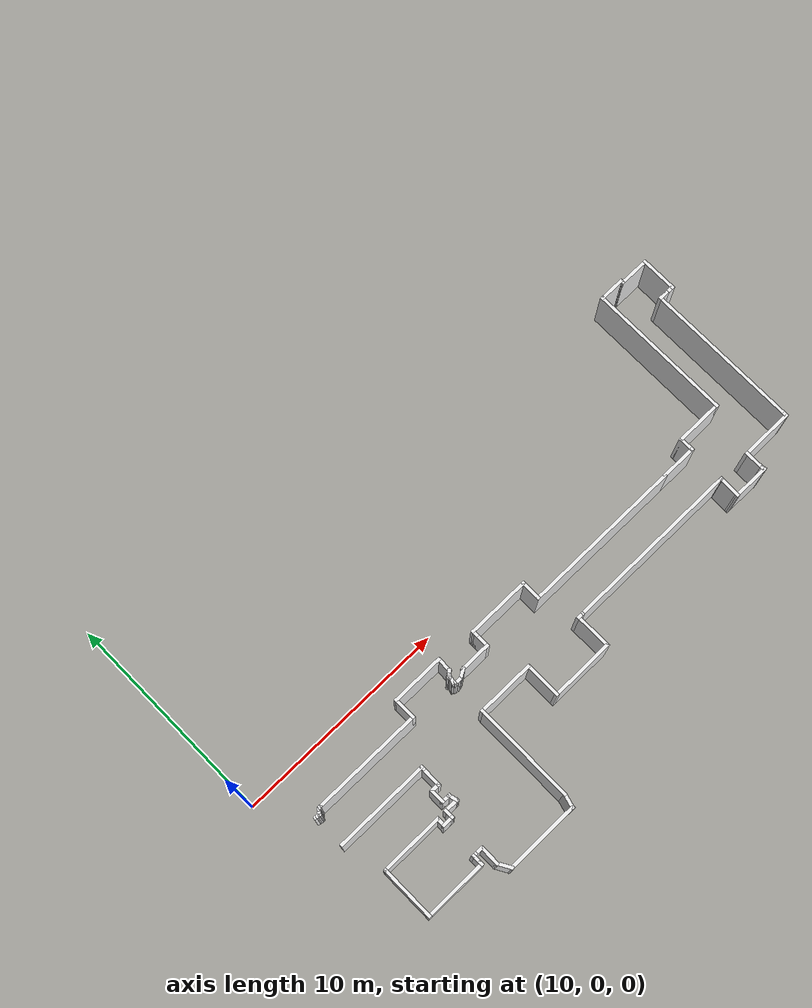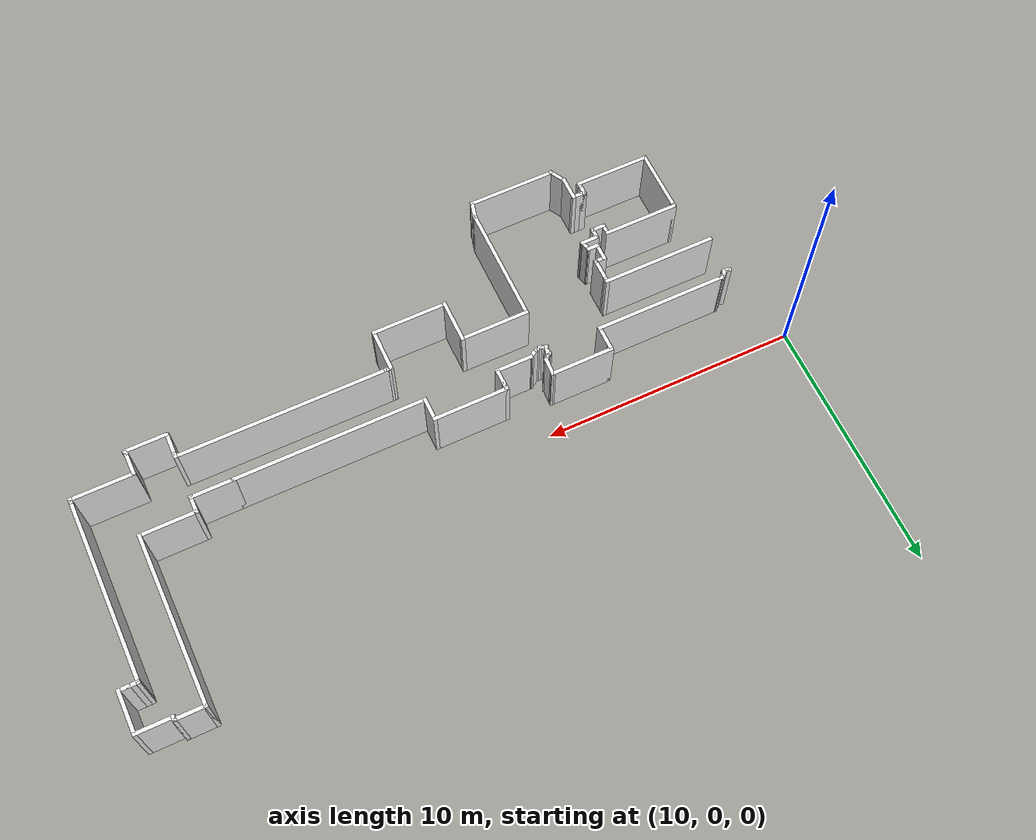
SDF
<sdf version="1.4">
 <model name="south_basement">
  <pose>12.3228 0.447268 0 0 -0 0</pose>
  <link name="Wall_100">
   <collision name="Wall_100_Collision">
    <geometry><box><size>1.5 0.15 2.5</size></box></geometry>
    <pose>0 0 1.25 0 -0 0</pose>
   </collision>
   <visual name="Wall_100_Visual">
    <pose>0 0 1.25 0 -0 0</pose>
    <geometry><box><size>1.5 0.15 2.5</size></box></geometry>
    <material>
     <script><uri>file://media/materials/scripts/gazebo.material</uri><name>Gazebo/White</name></script>
     <ambient>1 1 1 1</ambient>
    </material>
   </visual>
   <pose>24.5122 4.41793 0 0 -0 0</pose>
  </link>
  <link name="Wall_101">
   <collision name="Wall_101_Collision">
    <geometry><box><size>1.75 0.15 2.5</size></box></geometry>
    <pose>0 0 1.25 0 -0 0</pose>
   </collision>
   <visual name="Wall_101_Visual">
    <pose>0 0 1.25 0 -0 0</pose>
    <geometry><box><size>1.75 0.15 2.5</size></box></geometry>
    <material>
     <script><uri>file://media/materials/scripts/gazebo.material</uri><name>Gazebo/White</name></script>
     <ambient>1 1 1 1</ambient>
    </material>
   </visual>
   <pose>25.1872 3.61794 0 0 0 -1.5708</pose>
  </link>
  <link name="Wall_102">
   <collision name="Wall_102_Collision">
    <geometry><box><size>0.5 0.15 2.5</size></box></geometry>
    <pose>0 0 1.25 0 -0 0</pose>
   </collision>
   <visual name="Wall_102_Visual">
    <pose>0 0 1.25 0 -0 0</pose>
    <geometry><box><size>0.5 0.15 2.5</size></box></geometry>
    <material>
     <script><uri>file://media/materials/scripts/gazebo.material</uri><name>Gazebo/White</name></script>
     <ambient>1 1 1 1</ambient>
    </material>
   </visual>
   <pose>25.0122 2.81793 0 0 -0 3.14159</pose>
  </link>
  <link name="Wall_103">
   <collision name="Wall_103_Collision">
    <geometry><box><size>0.5 0.15 2.5</size></box></geometry>
    <pose>0 0 1.25 0 -0 0</pose>
   </collision>
   <visual name="Wall_103_Visual">
    <pose>0 0 1.25 0 -0 0</pose>
    <geometry><box><size>0.5 0.15 2.5</size></box></geometry>
    <material>
     <script><uri>file://media/materials/scripts/gazebo.material</uri><name>Gazebo/White</name></script>
     <ambient>1 1 1 1</ambient>
    </material>
   </visual>
   <pose>24.6622 2.81793 0 0 -0 3.14159</pose>
  </link>
  <link name="Wall_104">
   <collision name="Wall_104_Collision">
    <geometry><box><size>7.25 0.15 2.5</size></box></geometry>
    <pose>0 0 1.25 0 -0 0</pose>
   </collision>
   <visual name="Wall_104_Visual">
    <pose>0 0 1.25 0 -0 0</pose>
    <geometry><box><size>7.25 0.15 2.5</size></box></geometry>
    <material>
     <script><uri>file://media/materials/scripts/gazebo.material</uri><name>Gazebo/White</name></script>
     <ambient>1 1 1 1</ambient>
    </material>
   </visual>
   <pose>24.4872 -0.732065 0 0 0 -1.5708</pose>
  </link>
  <link name="Wall_105">
   <collision name="Wall_105_Collision">
    <geometry><box><size>0.25 0.15 2.5</size></box></geometry>
    <pose>0 0 1.25 0 -0 0</pose>
   </collision>
   <visual name="Wall_105_Visual">
    <pose>0 0 1.25 0 -0 0</pose>
    <geometry><box><size>0.25 0.15 2.5</size></box></geometry>
    <material>
     <script><uri>file://media/materials/scripts/gazebo.material</uri><name>Gazebo/White</name></script>
     <ambient>1 1 1 1</ambient>
    </material>
   </visual>
   <pose>24.4872 -4.33207 0 0 0 -1.5708</pose>
  </link>
  <link name="Wall_106">
   <collision name="Wall_106_Collision">
    <geometry><box><size>2.5 0.15 2.5</size></box></geometry>
    <pose>0 0 1.25 0 -0 0</pose>
   </collision>
   <visual name="Wall_106_Visual">
    <pose>0 0 1.25 0 -0 0</pose>
    <geometry><box><size>2.5 0.15 2.5</size></box></geometry>
    <material>
     <script><uri>file://media/materials/scripts/gazebo.material</uri><name>Gazebo/White</name></script>
     <ambient>1 1 1 1</ambient>
    </material>
   </visual>
   <pose>23.3122 -4.38206 0 0 -0 3.14159</pose>
  </link>
  <link name="Wall_107">
   <collision name="Wall_107_Collision">
    <geometry><box><size>1 0.15 2.5</size></box></geometry>
    <pose>0 0 1.25 0 -0 0</pose>
   </collision>
   <visual name="Wall_107_Visual">
    <pose>0 0 1.25 0 -0 0</pose>
    <geometry><box><size>1 0.15 2.5</size></box></geometry>
    <material>
     <script><uri>file://media/materials/scripts/gazebo.material</uri><name>Gazebo/White</name></script>
     <ambient>1 1 1 1</ambient>
    </material>
   </visual>
   <pose>22.1372 -4.80706 0 0 0 -1.5708</pose>
  </link>
  <link name="Wall_108">
   <collision name="Wall_108_Collision">
    <geometry><box><size>0.25 0.15 2.5</size></box></geometry>
    <pose>0 0 1.25 0 -0 0</pose>
   </collision>
   <visual name="Wall_108_Visual">
    <pose>0 0 1.25 0 -0 0</pose>
    <geometry><box><size>0.25 0.15 2.5</size></box></geometry>
    <material>
     <script><uri>file://media/materials/scripts/gazebo.material</uri><name>Gazebo/White</name></script>
     <ambient>1 1 1 1</ambient>
    </material>
   </visual>
   <pose>22.1501 -5.28036 0 0 0 -1.309</pose>
  </link>
  <link name="Wall_109">
   <collision name="Wall_109_Collision">
    <geometry><box><size>1.75 0.15 2.5</size></box></geometry>
    <pose>0 0 1.25 0 -0 0</pose>
   </collision>
   <visual name="Wall_109_Visual">
    <pose>0 0 1.25 0 -0 0</pose>
    <geometry><box><size>1.75 0.15 2.5</size></box></geometry>
    <material>
     <script><uri>file://media/materials/scripts/gazebo.material</uri><name>Gazebo/White</name></script>
     <ambient>1 1 1 1</ambient>
    </material>
   </visual>
   <pose>21.3631 -5.32866 0 0 -0 3.14159</pose>
  </link>
  <link name="Wall_110">
   <collision name="Wall_110_Collision">
    <geometry><box><size>0.15 0.15 2.5</size></box></geometry>
    <pose>0 0 1.25 0 -0 0</pose>
   </collision>
   <visual name="Wall_110_Visual">
    <pose>0 0 1.25 0 -0 0</pose>
    <geometry><box><size>0.15 0.15 2.5</size></box></geometry>
    <material>
     <script><uri>file://media/materials/scripts/gazebo.material</uri><name>Gazebo/White</name></script>
     <ambient>1 1 1 1</ambient>
    </material>
   </visual>
   <pose>20.5631 -5.32866 0 0 -0 0</pose>
  </link>
  <link name="Wall_111">
   <collision name="Wall_111_Collision">
    <geometry><box><size>1 0.15 2.5</size></box></geometry>
    <pose>0 0 1.25 0 -0 0</pose>
   </collision>
   <visual name="Wall_111_Visual">
    <pose>0 0 1.25 0 -0 0</pose>
    <geometry><box><size>1 0.15 2.5</size></box></geometry>
    <material>
     <script><uri>file://media/materials/scripts/gazebo.material</uri><name>Gazebo/White</name></script>
     <ambient>1 1 1 1</ambient>
    </material>
   </visual>
   <pose>20.5763 -4.90366 0 0 -0 1.53969</pose>
  </link>
  <link name="Wall_114">
   <collision name="Wall_114_Collision">
    <geometry><box><size>0.25 0.15 2.5</size></box></geometry>
    <pose>0 0 1.25 0 -0 0</pose>
   </collision>
   <visual name="Wall_114_Visual">
    <pose>0 0 1.25 0 -0 0</pose>
    <geometry><box><size>0.25 0.15 2.5</size></box></geometry>
    <material>
     <script><uri>file://media/materials/scripts/gazebo.material</uri><name>Gazebo/White</name></script>
     <ambient>1 1 1 1</ambient>
    </material>
   </visual>
   <pose>20.5895 -4.42866 0 0 -0 1.5708</pose>
  </link>
  <link name="Wall_115">
   <collision name="Wall_115_Collision">
    <geometry><box><size>8.25 0.15 2.5</size></box></geometry>
    <pose>0 0 1.25 0 -0 0</pose>
   </collision>
   <visual name="Wall_115_Visual">
    <pose>0 0 1.25 0 -0 0</pose>
    <geometry><box><size>8.25 0.15 2.5</size></box></geometry>
    <material>
     <script><uri>file://media/materials/scripts/gazebo.material</uri><name>Gazebo/White</name></script>
     <ambient>1 1 1 1</ambient>
    </material>
   </visual>
   <pose>16.5395 -4.37866 0 0 -0 3.14159</pose>
  </link>
  <link name="Wall_116">
   <collision name="Wall_116_Collision">
    <geometry><box><size>0.25 0.15 2.5</size></box></geometry>
    <pose>0 0 1.25 0 -0 0</pose>
   </collision>
   <visual name="Wall_116_Visual">
    <pose>0 0 1.25 0 -0 0</pose>
    <geometry><box><size>0.25 0.15 2.5</size></box></geometry>
    <material>
     <script><uri>file://media/materials/scripts/gazebo.material</uri><name>Gazebo/White</name></script>
     <ambient>1 1 1 1</ambient>
    </material>
   </visual>
   <pose>12.4395 -4.37866 0 0 -0 3.14159</pose>
  </link>
  <link name="Wall_117">
   <collision name="Wall_117_Collision">
    <geometry><box><size>0.25 0.15 2.5</size></box></geometry>
    <pose>0 0 1.25 0 -0 0</pose>
   </collision>
   <visual name="Wall_117_Visual">
    <pose>0 0 1.25 0 -0 0</pose>
    <geometry><box><size>0.25 0.15 2.5</size></box></geometry>
    <material>
     <script><uri>file://media/materials/scripts/gazebo.material</uri><name>Gazebo/White</name></script>
     <ambient>1 1 1 1</ambient>
    </material>
   </visual>
   <pose>12.3395 -4.37866 0 0 -0 3.14159</pose>
  </link>
  <link name="Wall_118">
   <collision name="Wall_118_Collision">
    <geometry><box><size>1.75 0.15 2.5</size></box></geometry>
    <pose>0 0 1.25 0 -0 0</pose>
   </collision>
   <visual name="Wall_118_Visual">
    <pose>0 0 1.25 0 -0 0</pose>
    <geometry><box><size>1.75 0.15 2.5</size></box></geometry>
    <material>
     <script><uri>file://media/materials/scripts/gazebo.material</uri><name>Gazebo/White</name></script>
     <ambient>1 1 1 1</ambient>
    </material>
   </visual>
   <pose>12.2895 -5.17866 0 0 0 -1.5708</pose>
  </link>
  <link name="Wall_119">
   <collision name="Wall_119_Collision">
    <geometry><box><size>3 0.15 2.5</size></box></geometry>
    <pose>0 0 1.25 0 -0 0</pose>
   </collision>
   <visual name="Wall_119_Visual">
    <pose>0 0 1.25 0 -0 0</pose>
    <geometry><box><size>3 0.15 2.5</size></box></geometry>
    <material>
     <script><uri>file://media/materials/scripts/gazebo.material</uri><name>Gazebo/White</name></script>
     <ambient>1 1 1 1</ambient>
    </material>
   </visual>
   <pose>10.8645 -5.97866 0 0 -0 3.14159</pose>
  </link>
  <link name="Wall_120">
   <collision name="Wall_120_Collision">
    <geometry><box><size>1.75 0.15 2.5</size></box></geometry>
    <pose>0 0 1.25 0 -0 0</pose>
   </collision>
   <visual name="Wall_120_Visual">
    <pose>0 0 1.25 0 -0 0</pose>
    <geometry><box><size>1.75 0.15 2.5</size></box></geometry>
    <material>
     <script><uri>file://media/materials/scripts/gazebo.material</uri><name>Gazebo/White</name></script>
     <ambient>1 1 1 1</ambient>
    </material>
   </visual>
   <pose>9.43951 -5.17866 0 0 -0 1.5708</pose>
  </link>
  <link name="Wall_121">
   <collision name="Wall_121_Collision">
    <geometry><box><size>2.75 0.15 2.5</size></box></geometry>
    <pose>0 0 1.25 0 -0 0</pose>
   </collision>
   <visual name="Wall_121_Visual">
    <pose>0 0 1.25 0 -0 0</pose>
    <geometry><box><size>2.75 0.15 2.5</size></box></geometry>
    <material>
     <script><uri>file://media/materials/scripts/gazebo.material</uri><name>Gazebo/White</name></script>
     <ambient>1 1 1 1</ambient>
    </material>
   </visual>
   <pose>8.13951 -4.37866 0 0 -0 3.14159</pose>
  </link>
  <link name="Wall_123">
   <collision name="Wall_123_Collision">
    <geometry><box><size>4.75 0.15 2.5</size></box></geometry>
    <pose>0 0 1.25 0 -0 0</pose>
   </collision>
   <visual name="Wall_123_Visual">
    <pose>0 0 1.25 0 -0 0</pose>
    <geometry><box><size>4.75 0.15 2.5</size></box></geometry>
    <material>
     <script><uri>file://media/materials/scripts/gazebo.material</uri><name>Gazebo/White</name></script>
     <ambient>1 1 1 1</ambient>
    </material>
   </visual>
   <pose>6.83951 -6.67866 0 0 0 -1.5708</pose>
  </link>
  <link name="Wall_124">
   <collision name="Wall_124_Collision">
    <geometry><box><size>0.75 0.15 2.5</size></box></geometry>
    <pose>0 0 1.25 0 -0 0</pose>
   </collision>
   <visual name="Wall_124_Visual">
    <pose>0 0 1.25 0 -0 0</pose>
    <geometry><box><size>0.75 0.15 2.5</size></box></geometry>
    <material>
     <script><uri>file://media/materials/scripts/gazebo.material</uri><name>Gazebo/White</name></script>
     <ambient>1 1 1 1</ambient>
    </material>
   </visual>
   <pose>6.76187 -9.26844 0 0 0 -1.8326</pose>
  </link>
  <link name="Wall_125">
   <collision name="Wall_125_Collision">
    <geometry><box><size>3.5 0.15 2.5</size></box></geometry>
    <pose>0 0 1.25 0 -0 0</pose>
   </collision>
   <visual name="Wall_125_Visual">
    <pose>0 0 1.25 0 -0 0</pose>
    <geometry><box><size>3.5 0.15 2.5</size></box></geometry>
    <material>
     <script><uri>file://media/materials/scripts/gazebo.material</uri><name>Gazebo/White</name></script>
     <ambient>1 1 1 1</ambient>
    </material>
   </visual>
   <pose>5.00922 -9.55821 0 0 -0 3.14159</pose>
  </link>
  <link name="Wall_126">
   <collision name="Wall_126_Collision">
    <geometry><box><size>0.75 0.15 2.5</size></box></geometry>
    <pose>0 0 1.25 0 -0 0</pose>
   </collision>
   <visual name="Wall_126_Visual">
    <pose>0 0 1.25 0 -0 0</pose>
    <geometry><box><size>0.75 0.15 2.5</size></box></geometry>
    <material>
     <script><uri>file://media/materials/scripts/gazebo.material</uri><name>Gazebo/White</name></script>
     <ambient>1 1 1 1</ambient>
    </material>
   </visual>
   <pose>3.18422 -9.29841 0 0 -0 2.0944</pose>
  </link>
  <link name="Wall_127">
   <collision name="Wall_127_Collision">
    <geometry><box><size>1 0.15 2.5</size></box></geometry>
    <pose>0 0 1.25 0 -0 0</pose>
   </collision>
   <visual name="Wall_127_Visual">
    <pose>0 0 1.25 0 -0 0</pose>
    <geometry><box><size>1 0.15 2.5</size></box></geometry>
    <material>
     <script><uri>file://media/materials/scripts/gazebo.material</uri><name>Gazebo/White</name></script>
     <ambient>1 1 1 1</ambient>
    </material>
   </visual>
   <pose>3.03422 -8.6136 0 0 -0 1.5708</pose>
  </link>
  <link name="Wall_128">
   <collision name="Wall_128_Collision">
    <geometry><box><size>0.5 0.15 2.5</size></box></geometry>
    <pose>0 0 1.25 0 -0 0</pose>
   </collision>
   <visual name="Wall_128_Visual">
    <pose>0 0 1.25 0 -0 0</pose>
    <geometry><box><size>0.5 0.15 2.5</size></box></geometry>
    <material>
     <script><uri>file://media/materials/scripts/gazebo.material</uri><name>Gazebo/White</name></script>
     <ambient>1 1 1 1</ambient>
    </material>
   </visual>
   <pose>2.85922 -8.1886 0 0 -0 3.14159</pose>
  </link>
  <link name="Wall_129">
   <collision name="Wall_129_Collision">
    <geometry><box><size>0.25 0.15 2.5</size></box></geometry>
    <pose>0 0 1.25 0 -0 0</pose>
   </collision>
   <visual name="Wall_129_Visual">
    <pose>0 0 1.25 0 -0 0</pose>
    <geometry><box><size>0.25 0.15 2.5</size></box></geometry>
    <material>
     <script><uri>file://media/materials/scripts/gazebo.material</uri><name>Gazebo/White</name></script>
     <ambient>1 1 1 1</ambient>
    </material>
   </visual>
   <pose>2.63422 -8.1886 0 0 -0 3.14159</pose>
  </link>
  <link name="Wall_130">
   <collision name="Wall_130_Collision">
    <geometry><box><size>0.5 0.15 2.5</size></box></geometry>
    <pose>0 0 1.25 0 -0 0</pose>
   </collision>
   <visual name="Wall_130_Visual">
    <pose>0 0 1.25 0 -0 0</pose>
    <geometry><box><size>0.5 0.15 2.5</size></box></geometry>
    <material>
     <script><uri>file://media/materials/scripts/gazebo.material</uri><name>Gazebo/White</name></script>
     <ambient>1 1 1 1</ambient>
    </material>
   </visual>
   <pose>2.58422 -8.3636 0 0 0 -1.5708</pose>
  </link>
  <link name="Wall_131">
   <collision name="Wall_131_Collision">
    <geometry><box><size>0.25 0.15 2.5</size></box></geometry>
    <pose>0 0 1.25 0 -0 0</pose>
   </collision>
   <visual name="Wall_131_Visual">
    <pose>0 0 1.25 0 -0 0</pose>
    <geometry><box><size>0.25 0.15 2.5</size></box></geometry>
    <material>
     <script><uri>file://media/materials/scripts/gazebo.material</uri><name>Gazebo/White</name></script>
     <ambient>1 1 1 1</ambient>
    </material>
   </visual>
   <pose>2.58422 -8.5886 0 0 0 -1.5708</pose>
  </link>
  <link name="Wall_132">
   <collision name="Wall_132_Collision">
    <geometry><box><size>3 0.15 2.5</size></box></geometry>
    <pose>0 0 1.25 0 -0 0</pose>
   </collision>
   <visual name="Wall_132_Visual">
    <pose>0 0 1.25 0 -0 0</pose>
    <geometry><box><size>3 0.15 2.5</size></box></geometry>
    <material>
     <script><uri>file://media/materials/scripts/gazebo.material</uri><name>Gazebo/White</name></script>
     <ambient>1 1 1 1</ambient>
    </material>
   </visual>
   <pose>1.15922 -8.6386 0 0 -0 3.14159</pose>
  </link>
  <link name="Wall_133">
   <collision name="Wall_133_Collision">
    <geometry><box><size>2.5 0.15 2.5</size></box></geometry>
    <pose>0 0 1.25 0 -0 0</pose>
   </collision>
   <visual name="Wall_133_Visual">
    <pose>0 0 1.25 0 -0 0</pose>
    <geometry><box><size>2.5 0.15 2.5</size></box></geometry>
    <material>
     <script><uri>file://media/materials/scripts/gazebo.material</uri><name>Gazebo/White</name></script>
     <ambient>1 1 1 1</ambient>
    </material>
   </visual>
   <pose>-0.26578 -7.4636 0 0 -0 1.5708</pose>
  </link>
  <link name="Wall_134">
   <collision name="Wall_134_Collision">
    <geometry><box><size>0.25 0.15 2.5</size></box></geometry>
    <pose>0 0 1.25 0 -0 0</pose>
   </collision>
   <visual name="Wall_134_Visual">
    <pose>0 0 1.25 0 -0 0</pose>
    <geometry><box><size>0.25 0.15 2.5</size></box></geometry>
    <material>
     <script><uri>file://media/materials/scripts/gazebo.material</uri><name>Gazebo/White</name></script>
     <ambient>1 1 1 1</ambient>
    </material>
   </visual>
   <pose>-0.26578 -6.2386 0 0 -0 1.5708</pose>
  </link>
  <link name="Wall_135">
   <collision name="Wall_135_Collision">
    <geometry><box><size>3 0.15 2.5</size></box></geometry>
    <pose>0 0 1.25 0 -0 0</pose>
   </collision>
   <visual name="Wall_135_Visual">
    <pose>0 0 1.25 0 -0 0</pose>
    <geometry><box><size>3 0.15 2.5</size></box></geometry>
    <material>
     <script><uri>file://media/materials/scripts/gazebo.material</uri><name>Gazebo/White</name></script>
     <ambient>1 1 1 1</ambient>
    </material>
   </visual>
   <pose>1.15922 -6.1886 0 0 -0 0</pose>
  </link>
  <link name="Wall_136">
   <collision name="Wall_136_Collision">
    <geometry><box><size>0.5 0.15 2.5</size></box></geometry>
    <pose>0 0 1.25 0 -0 0</pose>
   </collision>
   <visual name="Wall_136_Visual">
    <pose>0 0 1.25 0 -0 0</pose>
    <geometry><box><size>0.5 0.15 2.5</size></box></geometry>
    <material>
     <script><uri>file://media/materials/scripts/gazebo.material</uri><name>Gazebo/White</name></script>
     <ambient>1 1 1 1</ambient>
    </material>
   </visual>
   <pose>2.58422 -6.3636 0 0 0 -1.5708</pose>
  </link>
  <link name="Wall_137">
   <collision name="Wall_137_Collision">
    <geometry><box><size>0.5 0.15 2.5</size></box></geometry>
    <pose>0 0 1.25 0 -0 0</pose>
   </collision>
   <visual name="Wall_137_Visual">
    <pose>0 0 1.25 0 -0 0</pose>
    <geometry><box><size>0.5 0.15 2.5</size></box></geometry>
    <material>
     <script><uri>file://media/materials/scripts/gazebo.material</uri><name>Gazebo/White</name></script>
     <ambient>1 1 1 1</ambient>
    </material>
   </visual>
   <pose>2.75922 -6.5386 0 0 -0 0</pose>
  </link>
  <link name="Wall_138">
   <collision name="Wall_138_Collision">
    <geometry><box><size>0.25 0.15 2.5</size></box></geometry>
    <pose>0 0 1.25 0 -0 0</pose>
   </collision>
   <visual name="Wall_138_Visual">
    <pose>0 0 1.25 0 -0 0</pose>
    <geometry><box><size>0.25 0.15 2.5</size></box></geometry>
    <material>
     <script><uri>file://media/materials/scripts/gazebo.material</uri><name>Gazebo/White</name></script>
     <ambient>1 1 1 1</ambient>
    </material>
   </visual>
   <pose>2.98422 -6.5386 0 0 -0 0</pose>
  </link>
  <link name="Wall_139">
   <collision name="Wall_139_Collision">
    <geometry><box><size>0.5 0.15 2.5</size></box></geometry>
    <pose>0 0 1.25 0 -0 0</pose>
   </collision>
   <visual name="Wall_139_Visual">
    <pose>0 0 1.25 0 -0 0</pose>
    <geometry><box><size>0.5 0.15 2.5</size></box></geometry>
    <material>
     <script><uri>file://media/materials/scripts/gazebo.material</uri><name>Gazebo/White</name></script>
     <ambient>1 1 1 1</ambient>
    </material>
   </visual>
   <pose>3.03422 -6.3636 0 0 -0 1.5708</pose>
  </link>
  <link name="Wall_140">
   <collision name="Wall_140_Collision">
    <geometry><box><size>0.75 0.15 2.5</size></box></geometry>
    <pose>0 0 1.25 0 -0 0</pose>
   </collision>
   <visual name="Wall_140_Visual">
    <pose>0 0 1.25 0 -0 0</pose>
    <geometry><box><size>0.75 0.15 2.5</size></box></geometry>
    <material>
     <script><uri>file://media/materials/scripts/gazebo.material</uri><name>Gazebo/White</name></script>
     <ambient>1 1 1 1</ambient>
    </material>
   </visual>
   <pose>3.33422 -6.1886 0 0 -0 0</pose>
  </link>
  <link name="Wall_141">
   <collision name="Wall_141_Collision">
    <geometry><box><size>0.5 0.15 2.5</size></box></geometry>
    <pose>0 0 1.25 0 -0 0</pose>
   </collision>
   <visual name="Wall_141_Visual">
    <pose>0 0 1.25 0 -0 0</pose>
    <geometry><box><size>0.5 0.15 2.5</size></box></geometry>
    <material>
     <script><uri>file://media/materials/scripts/gazebo.material</uri><name>Gazebo/White</name></script>
     <ambient>1 1 1 1</ambient>
    </material>
   </visual>
   <pose>3.58893 -6.01956 0 0 -0 1.8326</pose>
  </link>
  <link name="Wall_142">
   <collision name="Wall_142_Collision">
    <geometry><box><size>0.5 0.15 2.5</size></box></geometry>
    <pose>0 0 1.25 0 -0 0</pose>
   </collision>
   <visual name="Wall_142_Visual">
    <pose>0 0 1.25 0 -0 0</pose>
    <geometry><box><size>0.5 0.15 2.5</size></box></geometry>
    <material>
     <script><uri>file://media/materials/scripts/gazebo.material</uri><name>Gazebo/White</name></script>
     <ambient>1 1 1 1</ambient>
    </material>
   </visual>
   <pose>3.36863 -5.85052 0 0 -0 3.14159</pose>
  </link>
  <link name="Wall_143">
   <collision name="Wall_143_Collision">
    <geometry><box><size>0.75 0.15 2.5</size></box></geometry>
    <pose>0 0 1.25 0 -0 0</pose>
   </collision>
   <visual name="Wall_143_Visual">
    <pose>0 0 1.25 0 -0 0</pose>
    <geometry><box><size>0.75 0.15 2.5</size></box></geometry>
    <material>
     <script><uri>file://media/materials/scripts/gazebo.material</uri><name>Gazebo/White</name></script>
     <ambient>1 1 1 1</ambient>
    </material>
   </visual>
   <pose>3.19363 -5.55052 0 0 -0 1.5708</pose>
  </link>
  <link name="Wall_144">
   <collision name="Wall_144_Collision">
    <geometry><box><size>0.5 0.15 2.5</size></box></geometry>
    <pose>0 0 1.25 0 -0 0</pose>
   </collision>
   <visual name="Wall_144_Visual">
    <pose>0 0 1.25 0 -0 0</pose>
    <geometry><box><size>0.5 0.15 2.5</size></box></geometry>
    <material>
     <script><uri>file://media/materials/scripts/gazebo.material</uri><name>Gazebo/White</name></script>
     <ambient>1 1 1 1</ambient>
    </material>
   </visual>
   <pose>3.36863 -5.25052 0 0 -0 0</pose>
  </link>
  <link name="Wall_145">
   <collision name="Wall_145_Collision">
    <geometry><box><size>1 0.15 2.5</size></box></geometry>
    <pose>0 0 1.25 0 -0 0</pose>
   </collision>
   <visual name="Wall_145_Visual">
    <pose>0 0 1.25 0 -0 0</pose>
    <geometry><box><size>1 0.15 2.5</size></box></geometry>
    <material>
     <script><uri>file://media/materials/scripts/gazebo.material</uri><name>Gazebo/White</name></script>
     <ambient>1 1 1 1</ambient>
    </material>
   </visual>
   <pose>3.54363 -4.82552 0 0 -0 1.5708</pose>
  </link>
  <link name="Wall_147">
   <collision name="Wall_147_Collision">
    <geometry><box><size>0.25 0.15 2.5</size></box></geometry>
    <pose>0 0 1.25 0 -0 0</pose>
   </collision>
   <visual name="Wall_147_Visual">
    <pose>0 0 1.25 0 -0 0</pose>
    <geometry><box><size>0.25 0.15 2.5</size></box></geometry>
    <material>
     <script><uri>file://media/materials/scripts/gazebo.material</uri><name>Gazebo/White</name></script>
     <ambient>1 1 1 1</ambient>
    </material>
   </visual>
   <pose>3.54363 -4.35052 0 0 -0 1.5708</pose>
  </link>
  <link name="Wall_148">
   <collision name="Wall_148_Collision">
    <geometry><box><size>4.5 0.15 2.5</size></box></geometry>
    <pose>0 0 1.25 0 -0 0</pose>
   </collision>
   <visual name="Wall_148_Visual">
    <pose>0 0 1.25 0 -0 0</pose>
    <geometry><box><size>4.5 0.15 2.5</size></box></geometry>
    <material>
     <script><uri>file://media/materials/scripts/gazebo.material</uri><name>Gazebo/White</name></script>
     <ambient>1 1 1 1</ambient>
    </material>
   </visual>
   <pose>1.36863 -4.30052 0 0 -0 3.14159</pose>
  </link>
  <link name="Wall_62">
   <collision name="Wall_62_Collision">
    <geometry><box><size>0.25 0.15 2.5</size></box></geometry>
    <pose>0 0 1.25 0 -0 0</pose>
   </collision>
   <visual name="Wall_62_Visual">
    <pose>0 0 1.25 0 -0 0</pose>
    <geometry><box><size>0.25 0.15 2.5</size></box></geometry>
    <material>
     <script><uri>file://media/materials/scripts/gazebo.material</uri><name>Gazebo/White</name></script>
     <ambient>1 1 1 1</ambient>
    </material>
   </visual>
   <pose>-0.769319 -2.82194 0 0 0 -0.261799</pose>
  </link>
  <link name="Wall_63">
   <collision name="Wall_63_Collision">
    <geometry><box><size>0.25 0.15 2.5</size></box></geometry>
    <pose>0 0 1.25 0 -0 0</pose>
   </collision>
   <visual name="Wall_63_Visual">
    <pose>0 0 1.25 0 -0 0</pose>
    <geometry><box><size>0.25 0.15 2.5</size></box></geometry>
    <material>
     <script><uri>file://media/materials/scripts/gazebo.material</uri><name>Gazebo/White</name></script>
     <ambient>1 1 1 1</ambient>
    </material>
   </visual>
   <pose>-0.671022 -2.83488 0 0 -0 0</pose>
  </link>
  <link name="Wall_66">
   <collision name="Wall_66_Collision">
    <geometry><box><size>0.25 0.15 2.5</size></box></geometry>
    <pose>0 0 1.25 0 -0 0</pose>
   </collision>
   <visual name="Wall_66_Visual">
    <pose>0 0 1.25 0 -0 0</pose>
    <geometry><box><size>0.25 0.15 2.5</size></box></geometry>
    <material>
     <script><uri>file://media/materials/scripts/gazebo.material</uri><name>Gazebo/White</name></script>
     <ambient>1 1 1 1</ambient>
    </material>
   </visual>
   <pose>-0.671022 -2.83488 0 0 -0 0</pose>
  </link>
  <link name="Wall_67">
   <collision name="Wall_67_Collision">
    <geometry><box><size>0.25 0.15 2.5</size></box></geometry>
    <pose>0 0 1.25 0 -0 0</pose>
   </collision>
   <visual name="Wall_67_Visual">
    <pose>0 0 1.25 0 -0 0</pose>
    <geometry><box><size>0.25 0.15 2.5</size></box></geometry>
    <material>
     <script><uri>file://media/materials/scripts/gazebo.material</uri><name>Gazebo/White</name></script>
     <ambient>1 1 1 1</ambient>
    </material>
   </visual>
   <pose>-0.596023 -2.79158 0 0 -0 1.0472</pose>
  </link>
  <link name="Wall_68">
   <collision name="Wall_68_Collision">
    <geometry><box><size>0.25 0.15 2.5</size></box></geometry>
    <pose>0 0 1.25 0 -0 0</pose>
   </collision>
   <visual name="Wall_68_Visual">
    <pose>0 0 1.25 0 -0 0</pose>
    <geometry><box><size>0.25 0.15 2.5</size></box></geometry>
    <material>
     <script><uri>file://media/materials/scripts/gazebo.material</uri><name>Gazebo/White</name></script>
     <ambient>1 1 1 1</ambient>
    </material>
   </visual>
   <pose>-0.535667 -2.71292 0 0 -0 0.785398</pose>
  </link>
  <link name="Wall_69">
   <collision name="Wall_69_Collision">
    <geometry><box><size>0.25 0.15 2.5</size></box></geometry>
    <pose>0 0 1.25 0 -0 0</pose>
   </collision>
   <visual name="Wall_69_Visual">
    <pose>0 0 1.25 0 -0 0</pose>
    <geometry><box><size>0.25 0.15 2.5</size></box></geometry>
    <material>
     <script><uri>file://media/materials/scripts/gazebo.material</uri><name>Gazebo/White</name></script>
     <ambient>1 1 1 1</ambient>
    </material>
   </visual>
   <pose>-0.457011 -2.65257 0 0 -0 0.523599</pose>
  </link>
  <link name="Wall_70">
   <collision name="Wall_70_Collision">
    <geometry><box><size>5.25 0.15 2.5</size></box></geometry>
    <pose>0 0 1.25 0 -0 0</pose>
   </collision>
   <visual name="Wall_70_Visual">
    <pose>0 0 1.25 0 -0 0</pose>
    <geometry><box><size>5.25 0.15 2.5</size></box></geometry>
    <material>
     <script><uri>file://media/materials/scripts/gazebo.material</uri><name>Gazebo/White</name></script>
     <ambient>1 1 1 1</ambient>
    </material>
   </visual>
   <pose>2.13629 -2.62757 0 0 -0 0</pose>
  </link>
  <link name="Wall_71">
   <collision name="Wall_71_Collision">
    <geometry><box><size>1 0.15 2.5</size></box></geometry>
    <pose>0 0 1.25 0 -0 0</pose>
   </collision>
   <visual name="Wall_71_Visual">
    <pose>0 0 1.25 0 -0 0</pose>
    <geometry><box><size>1 0.15 2.5</size></box></geometry>
    <material>
     <script><uri>file://media/materials/scripts/gazebo.material</uri><name>Gazebo/White</name></script>
     <ambient>1 1 1 1</ambient>
    </material>
   </visual>
   <pose>4.68629 -2.20257 0 0 -0 1.5708</pose>
  </link>
  <link name="Wall_72">
   <collision name="Wall_72_Collision">
    <geometry><box><size>0.25 0.15 2.5</size></box></geometry>
    <pose>0 0 1.25 0 -0 0</pose>
   </collision>
   <visual name="Wall_72_Visual">
    <pose>0 0 1.25 0 -0 0</pose>
    <geometry><box><size>0.25 0.15 2.5</size></box></geometry>
    <material>
     <script><uri>file://media/materials/scripts/gazebo.material</uri><name>Gazebo/White</name></script>
     <ambient>1 1 1 1</ambient>
    </material>
   </visual>
   <pose>4.68629 -1.72757 0 0 -0 1.5708</pose>
  </link>
  <link name="Wall_73">
   <collision name="Wall_73_Collision">
    <geometry><box><size>2.52645 0.15 2.5</size></box></geometry>
    <pose>0 0 1.25 0 -0 0</pose>
   </collision>
   <visual name="Wall_73_Visual">
    <pose>0 0 1.25 0 -0 0</pose>
    <geometry><box><size>2.52645 0.15 2.5</size></box></geometry>
    <material>
     <script><uri>file://media/materials/scripts/gazebo.material</uri><name>Gazebo/White</name></script>
     <ambient>1 1 1 1</ambient>
    </material>
   </visual>
   <pose>5.87452 -1.67757 0 0 -0 0</pose>
  </link>
  <link name="Wall_74">
   <collision name="Wall_74_Collision">
    <geometry><box><size>0.75 0.15 2.5</size></box></geometry>
    <pose>0 0 1.25 0 -0 0</pose>
   </collision>
   <visual name="Wall_74_Visual">
    <pose>0 0 1.25 0 -0 0</pose>
    <geometry><box><size>0.75 0.15 2.5</size></box></geometry>
    <material>
     <script><uri>file://media/materials/scripts/gazebo.material</uri><name>Gazebo/White</name></script>
     <ambient>1 1 1 1</ambient>
    </material>
   </visual>
   <pose>7.04952 -1.97757 0 0 0 -1.61485</pose>
  </link>
  <link name="Wall_75">
   <collision name="Wall_75_Collision">
    <geometry><box><size>0.25 0.15 2.5</size></box></geometry>
    <pose>0 0 1.25 0 -0 0</pose>
   </collision>
   <visual name="Wall_75_Visual">
    <pose>0 0 1.25 0 -0 0</pose>
    <geometry><box><size>0.25 0.15 2.5</size></box></geometry>
    <material>
     <script><uri>file://media/materials/scripts/gazebo.material</uri><name>Gazebo/White</name></script>
     <ambient>1 1 1 1</ambient>
    </material>
   </visual>
   <pose>7.00094 -2.31292 0 0 0 -2.35619</pose>
  </link>
  <link name="Wall_76">
   <collision name="Wall_76_Collision">
    <geometry><box><size>0.25 0.15 2.5</size></box></geometry>
    <pose>0 0 1.25 0 -0 0</pose>
   </collision>
   <visual name="Wall_76_Visual">
    <pose>0 0 1.25 0 -0 0</pose>
    <geometry><box><size>0.25 0.15 2.5</size></box></geometry>
    <material>
     <script><uri>file://media/materials/scripts/gazebo.material</uri><name>Gazebo/White</name></script>
     <ambient>1 1 1 1</ambient>
    </material>
   </visual>
   <pose>6.93023 -2.38364 0 0 0 -2.35619</pose>
  </link>
  <link name="Wall_77">
   <collision name="Wall_77_Collision">
    <geometry><box><size>0.25 0.15 2.5</size></box></geometry>
    <pose>0 0 1.25 0 -0 0</pose>
   </collision>
   <visual name="Wall_77_Visual">
    <pose>0 0 1.25 0 -0 0</pose>
    <geometry><box><size>0.25 0.15 2.5</size></box></geometry>
    <material>
     <script><uri>file://media/materials/scripts/gazebo.material</uri><name>Gazebo/White</name></script>
     <ambient>1 1 1 1</ambient>
    </material>
   </visual>
   <pose>6.85951 -2.45435 0 0 0 -2.35619</pose>
  </link>
  <link name="Wall_78">
   <collision name="Wall_78_Collision">
    <geometry><box><size>0.15 0.15 2.5</size></box></geometry>
    <pose>0 0 1.25 0 -0 0</pose>
   </collision>
   <visual name="Wall_78_Visual">
    <pose>0 0 1.25 0 -0 0</pose>
    <geometry><box><size>0.15 0.15 2.5</size></box></geometry>
    <material>
     <script><uri>file://media/materials/scripts/gazebo.material</uri><name>Gazebo/White</name></script>
     <ambient>1 1 1 1</ambient>
    </material>
   </visual>
   <pose>6.82416 -2.4897 0 0 -0 0</pose>
  </link>
  <link name="Wall_81">
   <collision name="Wall_81_Collision">
    <geometry><box><size>0.5 0.15 2.5</size></box></geometry>
    <pose>0 0 1.25 0 -0 0</pose>
   </collision>
   <visual name="Wall_81_Visual">
    <pose>0 0 1.25 0 -0 0</pose>
    <geometry><box><size>0.5 0.15 2.5</size></box></geometry>
    <material>
     <script><uri>file://media/materials/scripts/gazebo.material</uri><name>Gazebo/White</name></script>
     <ambient>1 1 1 1</ambient>
    </material>
   </visual>
   <pose>6.84957 -2.58803 0 0 0 -1.8326</pose>
  </link>
  <link name="Wall_82">
   <collision name="Wall_82_Collision">
    <geometry><box><size>0.25 0.15 2.5</size></box></geometry>
    <pose>0 0 1.25 0 -0 0</pose>
   </collision>
   <visual name="Wall_82_Visual">
    <pose>0 0 1.25 0 -0 0</pose>
    <geometry><box><size>0.25 0.15 2.5</size></box></geometry>
    <material>
     <script><uri>file://media/materials/scripts/gazebo.material</uri><name>Gazebo/White</name></script>
     <ambient>1 1 1 1</ambient>
    </material>
   </visual>
   <pose>6.84758 -2.78206 0 0 0 -0.523599</pose>
  </link>
  <link name="Wall_83">
   <collision name="Wall_83_Collision">
    <geometry><box><size>0.25 0.15 2.5</size></box></geometry>
    <pose>0 0 1.25 0 -0 0</pose>
   </collision>
   <visual name="Wall_83_Visual">
    <pose>0 0 1.25 0 -0 0</pose>
    <geometry><box><size>0.25 0.15 2.5</size></box></geometry>
    <material>
     <script><uri>file://media/materials/scripts/gazebo.material</uri><name>Gazebo/White</name></script>
     <ambient>1 1 1 1</ambient>
    </material>
   </visual>
   <pose>6.93918 -2.82001 0 0 0 -0.261799</pose>
  </link>
  <link name="Wall_84">
   <collision name="Wall_84_Collision">
    <geometry><box><size>0.25 0.15 2.5</size></box></geometry>
    <pose>0 0 1.25 0 -0 0</pose>
   </collision>
   <visual name="Wall_84_Visual">
    <pose>0 0 1.25 0 -0 0</pose>
    <geometry><box><size>0.25 0.15 2.5</size></box></geometry>
    <material>
     <script><uri>file://media/materials/scripts/gazebo.material</uri><name>Gazebo/White</name></script>
     <ambient>1 1 1 1</ambient>
    </material>
   </visual>
   <pose>7.03748 -2.83295 0 0 -0 0</pose>
  </link>
  <link name="Wall_85">
   <collision name="Wall_85_Collision">
    <geometry><box><size>0.25 0.15 2.5</size></box></geometry>
    <pose>0 0 1.25 0 -0 0</pose>
   </collision>
   <visual name="Wall_85_Visual">
    <pose>0 0 1.25 0 -0 0</pose>
    <geometry><box><size>0.25 0.15 2.5</size></box></geometry>
    <material>
     <script><uri>file://media/materials/scripts/gazebo.material</uri><name>Gazebo/White</name></script>
     <ambient>1 1 1 1</ambient>
    </material>
   </visual>
   <pose>7.13577 -2.82001 0 0 -0 0.261799</pose>
  </link>
  <link name="Wall_86">
   <collision name="Wall_86_Collision">
    <geometry><box><size>0.5 0.15 2.5</size></box></geometry>
    <pose>0 0 1.25 0 -0 0</pose>
   </collision>
   <visual name="Wall_86_Visual">
    <pose>0 0 1.25 0 -0 0</pose>
    <geometry><box><size>0.5 0.15 2.5</size></box></geometry>
    <material>
     <script><uri>file://media/materials/scripts/gazebo.material</uri><name>Gazebo/White</name></script>
     <ambient>1 1 1 1</ambient>
    </material>
   </visual>
   <pose>7.33563 -2.71956 0 0 -0 0.523599</pose>
  </link>
  <link name="Wall_87">
   <collision name="Wall_87_Collision">
    <geometry><box><size>1.5 0.15 2.5</size></box></geometry>
    <pose>0 0 1.25 0 -0 0</pose>
   </collision>
   <visual name="Wall_87_Visual">
    <pose>0 0 1.25 0 -0 0</pose>
    <geometry><box><size>1.5 0.15 2.5</size></box></geometry>
    <material>
     <script><uri>file://media/materials/scripts/gazebo.material</uri><name>Gazebo/White</name></script>
     <ambient>1 1 1 1</ambient>
    </material>
   </visual>
   <pose>8.16218 -2.63206 0 0 -0 0</pose>
  </link>
  <link name="Wall_88">
   <collision name="Wall_88_Collision">
    <geometry><box><size>0.75 0.15 2.5</size></box></geometry>
    <pose>0 0 1.25 0 -0 0</pose>
   </collision>
   <visual name="Wall_88_Visual">
    <pose>0 0 1.25 0 -0 0</pose>
    <geometry><box><size>0.75 0.15 2.5</size></box></geometry>
    <material>
     <script><uri>file://media/materials/scripts/gazebo.material</uri><name>Gazebo/White</name></script>
     <ambient>1 1 1 1</ambient>
    </material>
   </visual>
   <pose>8.83718 -2.33207 0 0 -0 1.5708</pose>
  </link>
  <link name="Wall_89">
   <collision name="Wall_89_Collision">
    <geometry><box><size>0.25 0.15 2.5</size></box></geometry>
    <pose>0 0 1.25 0 -0 0</pose>
   </collision>
   <visual name="Wall_89_Visual">
    <pose>0 0 1.25 0 -0 0</pose>
    <geometry><box><size>0.25 0.15 2.5</size></box></geometry>
    <material>
     <script><uri>file://media/materials/scripts/gazebo.material</uri><name>Gazebo/White</name></script>
     <ambient>1 1 1 1</ambient>
    </material>
   </visual>
   <pose>8.83718 -1.98206 0 0 -0 1.5708</pose>
  </link>
  <link name="Wall_90">
   <collision name="Wall_90_Collision">
    <geometry><box><size>0.25 0.15 2.5</size></box></geometry>
    <pose>0 0 1.25 0 -0 0</pose>
   </collision>
   <visual name="Wall_90_Visual">
    <pose>0 0 1.25 0 -0 0</pose>
    <geometry><box><size>0.25 0.15 2.5</size></box></geometry>
    <material>
     <script><uri>file://media/materials/scripts/gazebo.material</uri><name>Gazebo/White</name></script>
     <ambient>1 1 1 1</ambient>
    </material>
   </visual>
   <pose>8.83718 -1.88207 0 0 -0 1.5708</pose>
  </link>
  <link name="Wall_91">
   <collision name="Wall_91_Collision">
    <geometry><box><size>3 0.15 2.5</size></box></geometry>
    <pose>0 0 1.25 0 -0 0</pose>
   </collision>
   <visual name="Wall_91_Visual">
    <pose>0 0 1.25 0 -0 0</pose>
    <geometry><box><size>3 0.15 2.5</size></box></geometry>
    <material>
     <script><uri>file://media/materials/scripts/gazebo.material</uri><name>Gazebo/White</name></script>
     <ambient>1 1 1 1</ambient>
    </material>
   </visual>
   <pose>10.2622 -1.83207 0 0 -0 0</pose>
  </link>
  <link name="Wall_92">
   <collision name="Wall_92_Collision">
    <geometry><box><size>1 0.15 2.5</size></box></geometry>
    <pose>0 0 1.25 0 -0 0</pose>
   </collision>
   <visual name="Wall_92_Visual">
    <pose>0 0 1.25 0 -0 0</pose>
    <geometry><box><size>1 0.15 2.5</size></box></geometry>
    <material>
     <script><uri>file://media/materials/scripts/gazebo.material</uri><name>Gazebo/White</name></script>
     <ambient>1 1 1 1</ambient>
    </material>
   </visual>
   <pose>11.6872 -2.25706 0 0 0 -1.5708</pose>
  </link>
  <link name="Wall_93">
   <collision name="Wall_93_Collision">
    <geometry><box><size>7.5 0.15 2.5</size></box></geometry>
    <pose>0 0 1.25 0 -0 0</pose>
   </collision>
   <visual name="Wall_93_Visual">
    <pose>0 0 1.25 0 -0 0</pose>
    <geometry><box><size>7.5 0.15 2.5</size></box></geometry>
    <material>
     <script><uri>file://media/materials/scripts/gazebo.material</uri><name>Gazebo/White</name></script>
     <ambient>1 1 1 1</ambient>
    </material>
   </visual>
   <pose>15.3622 -2.68207 0 0 -0 0</pose>
  </link>
  <link name="Wall_94">
   <collision name="Wall_94_Collision">
    <geometry><box><size>1.75 0.15 2.5</size></box></geometry>
    <pose>0 0 1.25 0 -0 0</pose>
   </collision>
   <visual name="Wall_94_Visual">
    <pose>0 0 1.25 0 -0 0</pose>
    <geometry><box><size>1.75 0.15 2.5</size></box></geometry>
    <material>
     <script><uri>file://media/materials/scripts/gazebo.material</uri><name>Gazebo/White</name></script>
     <ambient>1 1 1 1</ambient>
    </material>
   </visual>
   <pose>19.8372 -2.68207 0 0 -0 0</pose>
  </link>
  <link name="Wall_95">
   <collision name="Wall_95_Collision">
    <geometry><box><size>0.75 0.15 2.5</size></box></geometry>
    <pose>0 0 1.25 0 -0 0</pose>
   </collision>
   <visual name="Wall_95_Visual">
    <pose>0 0 1.25 0 -0 0</pose>
    <geometry><box><size>0.75 0.15 2.5</size></box></geometry>
    <material>
     <script><uri>file://media/materials/scripts/gazebo.material</uri><name>Gazebo/White</name></script>
     <ambient>1 1 1 1</ambient>
    </material>
   </visual>
   <pose>20.6372 -2.38206 0 0 -0 1.5708</pose>
  </link>
  <link name="Wall_96">
   <collision name="Wall_96_Collision">
    <geometry><box><size>2.25 0.15 2.5</size></box></geometry>
    <pose>0 0 1.25 0 -0 0</pose>
   </collision>
   <visual name="Wall_96_Visual">
    <pose>0 0 1.25 0 -0 0</pose>
    <geometry><box><size>2.25 0.15 2.5</size></box></geometry>
    <material>
     <script><uri>file://media/materials/scripts/gazebo.material</uri><name>Gazebo/White</name></script>
     <ambient>1 1 1 1</ambient>
    </material>
   </visual>
   <pose>21.6872 -2.08207 0 0 -0 0</pose>
  </link>
  <link name="Wall_97">
   <collision name="Wall_97_Collision">
    <geometry><box><size>6.75 0.15 2.5</size></box></geometry>
    <pose>0 0 1.25 0 -0 0</pose>
   </collision>
   <visual name="Wall_97_Visual">
    <pose>0 0 1.25 0 -0 0</pose>
    <geometry><box><size>6.75 0.15 2.5</size></box></geometry>
    <material>
     <script><uri>file://media/materials/scripts/gazebo.material</uri><name>Gazebo/White</name></script>
     <ambient>1 1 1 1</ambient>
    </material>
   </visual>
   <pose>22.7372 1.21793 0 0 -0 1.5708</pose>
  </link>
  <link name="Wall_98">
   <collision name="Wall_98_Collision">
    <geometry><box><size>1.25 0.15 2.5</size></box></geometry>
    <pose>0 0 1.25 0 -0 0</pose>
   </collision>
   <visual name="Wall_98_Visual">
    <pose>0 0 1.25 0 -0 0</pose>
    <geometry><box><size>1.25 0.15 2.5</size></box></geometry>
    <material>
     <script><uri>file://media/materials/scripts/gazebo.material</uri><name>Gazebo/White</name></script>
     <ambient>1 1 1 1</ambient>
    </material>
   </visual>
   <pose>23.2872 4.51793 0 0 -0 0</pose>
  </link>
  <link name="Wall_99">
   <collision name="Wall_99_Collision">
    <geometry><box><size>0.25 0.15 2.5</size></box></geometry>
    <pose>0 0 1.25 0 -0 0</pose>
   </collision>
   <visual name="Wall_99_Visual">
    <pose>0 0 1.25 0 -0 0</pose>
    <geometry><box><size>0.25 0.15 2.5</size></box></geometry>
    <material>
     <script><uri>file://media/materials/scripts/gazebo.material</uri><name>Gazebo/White</name></script>
     <ambient>1 1 1 1</ambient>
    </material>
   </visual>
   <pose>23.8372 4.46793 0 0 0 -1.5708</pose>
  </link>
  <static>1</static>
 </model>
</sdf>
